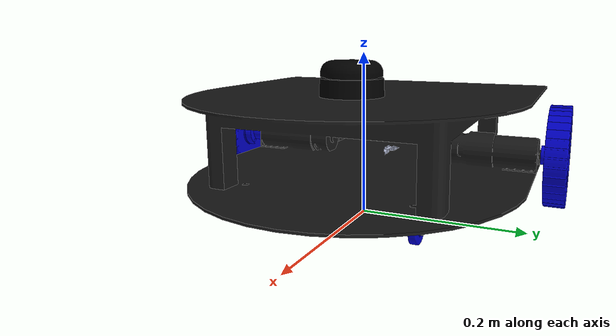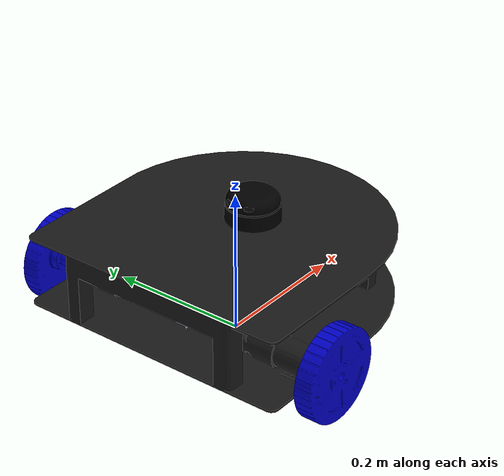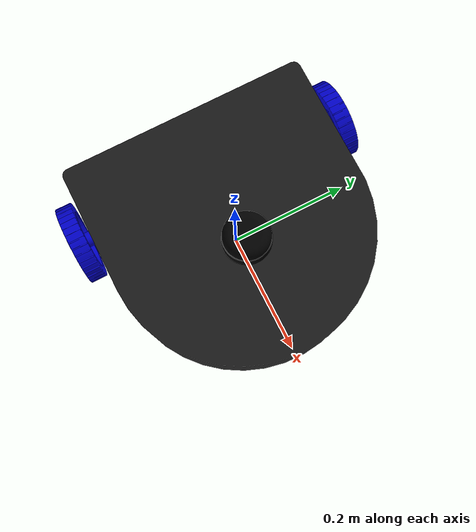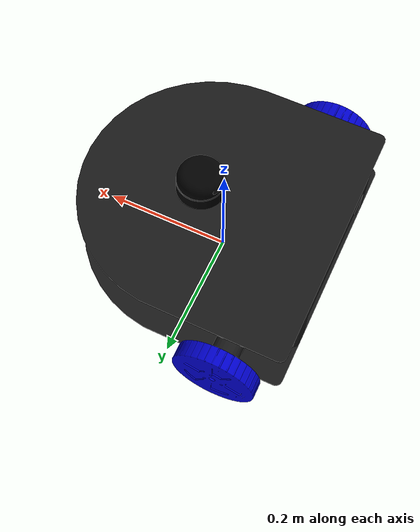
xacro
<?xml version="1.0"?>
<robot  xmlns:xacro="http://ros.org/wiki/xacro"
        name="difflidarbot" >

    <xacro:include filename="$(find difflidarbot)/urdf/caster.urdf.xacro" />
    <xacro:include filename="$(find difflidarbot)/urdf/wheel.urdf.xacro" />
    <xacro:include filename="$(find difflidarbot)/urdf/materials.urdf.xacro" />
    <xacro:include filename="$(find difflidarbot)/urdf/difflidarbot.gazebo.xacro" />

    <xacro:arg name="mesh_enabled" default="true" />
    <xacro:arg name="robot_namespace" default="/"/>
    <xacro:arg name="botname" default=""/>

    <link   name =  "base_footprint"/>

    <link   name = "base_link">
    <inertial>
      <origin
        xyz="-0.0239707214467182 0.000504760596907988 0.0534613565294754"
        rpy="0 0 0" />
      <mass
        value="2.06426285784522" />
      <inertia
        ixx="0.0208727044569018"
        ixy="-1.63273104069268E-05"
        ixz="-2.76908548590674E-10"
        iyy="0.023784285658067"
        iyz="-1.79813734565039E-08"
        izz="0.0437345754000742" />
    </inertial>

		<visual>
		  <origin
			xyz="0 0 0"
			rpy="0 0 0" />
		  <geometry>
			<mesh
			  filename="package://difflidarbot/meshes/base_link.STL" />
		  </geometry>
		  <material name="DarkGrey" />
		</visual>

		<collision>
			<origin
				xyz="0 0 0"
				rpy="0 0 0" />
			<geometry>
			<mesh filename="package://difflidarbot/meshes/base_link.STL" />
			</geometry>
			<material name="DarkGrey" />
		</collision>

    </link>

    <joint name = "base_joint"  type = "fixed">
        <parent link="base_footprint"/>
        <child link="base_link"/>
        <origin xyz="0.0 0.0 0.05305" rpy="0 0 0" />
        <axis xyz="0 1 0" rpy="0 0 0" />
    </joint>

	<link	name="base_scan">
    <inertial>
      <origin
        xyz="0.00083499216952812 2.77877841996649E-05 -0.0165538422721794"
        rpy="0 0 0" />
      <mass
        value="0.162441348075653" />
      <inertia
        ixx="7.45180172109881E-05"
        ixy="1.9767749172107E-08"
        ixz="4.83741945263861E-07"
        iyy="7.39254523433583E-05"
        iyz="1.61173090085499E-08"
        izz="0.000105565753033107" />
    </inertial>
		<visual>
			<origin
				xyz="0 0 0"
				rpy="0 0 0" />
			<geometry>
			<mesh
				filename="package://difflidarbot/meshes/lidar.STL" />
			</geometry>
			<material name="Black" />
		</visual>
		<collision>
			<origin
				xyz="0 0 0"
				rpy="0 0 0" />
			<geometry>
				<mesh filename="package://difflidarbot/meshes/lidar.STL" />
		  </geometry>
		</collision>
	</link>

	<joint name="scan_joint" type="fixed">
		<origin
			xyz="0.038 0.00021705 0.13355"
			rpy="0 0 3.14159" />
		<parent
		  link="base_link" />
		<child
		  link="base_scan" />
		<axis
		  xyz="0 0 0" />
	</joint>

  <link
    name="imu_link">
    <inertial>
      <origin
        xyz="-0.00153952953427407 -0.00101955092400335 -0.00010537065585281"
        rpy="0 0 0" />
      <mass
        value="0.000529368897619893" />
      <inertia
        ixx="1.33291986132662E-08"
        ixy="-6.24680721546872E-14"
        ixz="-5.60525253440556E-12"
        iyy="1.99747899401287E-08"
        iyz="1.93834054606256E-18"
        izz="7.56085395944572E-09" />
    </inertial>
    <visual>
      <origin
        xyz="0 0 0"
        rpy="0 0 0" />
      <geometry>
        <mesh
          filename="package://difflidarbot/meshes/imu.STL" />
      </geometry>
      <material
        name="">
        <color
          rgba="0.792156862745098 0.819607843137255 0.933333333333333 1" />
      </material>
    </visual>
    <collision>
      <origin
        xyz="0 0 0"
        rpy="0 0 0" />
      <geometry>
        <mesh
          filename="package://difflidarbot/meshes/imu.STL" />
      </geometry>
    </collision>
  </link>
  <joint
    name="imu_joint"
    type="fixed">
    <origin
      xyz="-0.101498719390972 0 0.00876299999999997"
      rpy="1.5707963267949 0 1.5707963267949" />
    <parent
      link="base_link" />
    <child
      link="imu_link" />
    <axis
      xyz="0 0 0" />
  </joint>

	<!--caster defination-->
    <xacro:caster caster_prefix="right" parent_link="base_link" >
    <origin
      xyz="0.11025499492819 -0.100173578496859 -0.00634591015875316"
      rpy="0 0 0" />
    </xacro:caster>

	<xacro:caster caster_prefix="left" parent_link="base_link" >
    <origin
      xyz="0.11025499492819 0.0998264215031362 -0.00634591015875452"
      rpy="0 0 0" />
    </xacro:caster>

	<!--wheel defination-->
	<xacro:wheel wheel_prefix="right" parent_link="base_link" >
    <origin
      xyz="-0.0920548053555096 -0.223443578496857 0.0190700000000028"
      rpy="0 0 0" />
    </xacro:wheel>

    <xacro:wheel wheel_prefix="left" parent_link="base_link" >
    <origin
      xyz="-0.0920548053555117 0.223096421503134 0.0190699999999972"
      rpy="0 0 0" />
    </xacro:wheel>

</robot>

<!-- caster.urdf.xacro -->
<robot xmlns:xacro="http://ros.org/wiki/xacro" >

	<!-- Caster Dimensions -->
    <xacro:property name="caster_wheel_length" value="0.01163" />
    <xacro:property name="caster_wheel_radius" value="0.01224" />
    <xacro:property name="caster_base_length" value="0.001" />
    <xacro:property name="caster_base_radius" value="0.004555" />
	<xacro:property name="caster_base_joint_x" value="0" />
    <xacro:property name="caster_base_joint_z" value="0" />
    <xacro:property name="caster_base_link_z" value="-0.05615" />
    <xacro:property name="M_PI" value="3.14" />

	<xacro:property name="wheel_kp" value="600000" />
    <xacro:property name="wheel_kd" value="3" />
    <xacro:property name="wheel_mu1" value="10000000" />
    <xacro:property name="wheel_mu2" value="10000000" />

	<xacro:macro name="caster" params="caster_prefix parent_link *joint_pose">
		<!-- Caster Wheel Link -->
		<link name="${caster_prefix}_caster_link">

    <inertial>
      <origin
        xyz="-1.38777878078145E-17 8.76035355368288E-17 0"
        rpy="0 0 0" />
      <mass
        value="0.00563231136965005" />
      <inertia
        ixx="3.23418393118784E-07"
        ixy="3.65661418016849E-09"
        ixz="-1.57577223364526E-23"
        iyy="5.74788995552012E-07"
        iyz="-1.98644591203129E-21"
        izz="3.23365212679329E-07" />
    </inertial>

			<visual>

				<xacro:if value="$(arg mesh_enabled)">
					<origin
					  xyz="0 0 0" rpy="0 0 0" />
					<geometry>
						<mesh filename="package://difflidarbot/meshes/${caster_prefix}_caster_wheel.STL" />
					</geometry>
				</xacro:if>

				<xacro:unless value="$(arg mesh_enabled)">
					<origin xyz="0 0 0" rpy="${M_PI/2} 0 0" />
					<geometry>
						<cylinder length="${caster_wheel_length/2}" radius="${caster_wheel_radius}" />
					</geometry>
				</xacro:unless>

				<material name="Blue"/>

			</visual>

			<collision>
				<origin
					xyz="0 0 0"
					rpy="0 0 0" />
				<geometry>
					<mesh
					  filename="package://difflidarbot/meshes/${caster_prefix}_caster_wheel.STL" />
				</geometry>
			</collision>
		</link>

		<!-- Caster Base Link -->
		<link name="${caster_prefix}_caster_base">

    <inertial>
      <origin
        xyz="-0.00448850794852911 0.000149901457637872 -0.00968047155100937"
        rpy="0 0 0" />
      <mass
        value="0.001767172170941" />
      <inertia
        ixx="8.78900008183846E-08"
        ixy="-1.12542070635438E-10"
        ixz="-9.61661842867818E-09"
        iyy="8.03579193921896E-08"
        iyz="1.36784047595661E-10"
        izz="9.26288314358772E-08" />
    </inertial>

			<visual>

				<xacro:if value="$(arg mesh_enabled)">
					<origin
						xyz="0 0 0"
						rpy="0 0 0" />
					<geometry>
					  <mesh filename="package://difflidarbot/meshes/${caster_prefix}_caster_base.STL" />
					</geometry>
				</xacro:if>

				<xacro:unless value="$(arg mesh_enabled)">
					<origin xyz="0 0 ${-caster_base_length/2}" rpy="0 0 0" />
					<geometry>
						<cylinder length="${caster_base_length}" radius="${caster_base_radius}" />
					</geometry>
				</xacro:unless>
			</visual>

			<collision>
				<origin
					xyz="0 0 0"
					rpy="0 0 0" />
				<geometry>
					<mesh
					  filename="package://difflidarbot/meshes/${caster_prefix}_caster_base.STL" />
				</geometry>
			</collision>

		</link>

		<!-- Caster Base Link and Wheel Link Joint -->
		<joint name="${caster_prefix}_cwheel" type="continuous">
			<parent link="${caster_prefix}_caster_base"/>
			<child link="${caster_prefix}_caster_link"/>
    <origin
      xyz="-0.0104182158452964 0.000151518664455497 -0.022873360204248"
      rpy="0 0 0" />
    <axis
      xyz="0 -1 0" />
		</joint>

		<!-- Caster base and parent joint -->
		<joint name="${caster_prefix}_caster" type="continuous">
			<parent link="${parent_link}"/>
			<child link="${caster_prefix}_caster_base"/>
			<xacro:insert_block name="joint_pose"/>
    <axis
      xyz="0 0 -1" />
		</joint>

	</xacro:macro>

</robot>

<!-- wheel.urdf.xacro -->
<robot name="wheel" xmlns:xacro="http://ros.org/wiki/xacro" >

<xacro:macro name="wheel" params="wheel_prefix parent_link *joint_pose">

		<!-- Wheel Link -->
		<link name="${wheel_prefix}_wheel_link">
    <inertial>
      <origin
        xyz="2.09333106404586E-10 -0.00152473725038332 1.05400796424071E-09"
        rpy="0 0 0" />
      <mass
        value="0.19611351357196" />
      <inertia
        ixx="0.00024859815585616"
        ixy="-4.33993186483824E-13"
        ixz="2.00773903511573E-12"
        iyy="0.000480450846970988"
        iyz="-2.18810412096022E-12"
        izz="0.000248598165586253" />
    </inertial>

			<visual>
				<origin
					xyz="0 0 0"
					rpy="0 0 0" />
				<geometry>
					<mesh filename="package://difflidarbot/meshes/${wheel_prefix}_wheel.STL" />
				</geometry>
				<material name="Blue"/>
			</visual>
			<collision>
				<origin
					xyz="0 0 0"
					rpy="0 0 0" />
					<geometry>
					<mesh
						filename="package://difflidarbot/meshes/${wheel_prefix}_wheel.STL" />
					</geometry>
				<material name="Blue"/>
			</collision>

		</link>

		<!-- Wheel Joint -->
		<joint name="${wheel_prefix}_wheel" type="continuous">
			<parent link="${parent_link}"/>
			<child link="${wheel_prefix}_wheel_link"/>
			<xacro:insert_block name="joint_pose"/>
    <axis
      xyz="0 1 0" />
    </joint>

</xacro:macro>

</robot>

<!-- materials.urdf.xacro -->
<robot>
  <material name="Blue">
    <color rgba="0.0 0.0 0.8 1.0"/>
  </material>

  <material name="Green">
    <color rgba="0.0 0.8 0.0 1.0"/>
  </material>

  <material name="Grey">
    <color rgba="0.7 0.7 0.7 1.0"/>
  </material>

  <material name="LightGrey">
    <color rgba="0.9 0.9 0.9 1.0"/>
  </material>

 <material name="DarkGrey">
   <color rgba="0.1 0.1 0.1 1.0"/>
 </material>

  <material name="Red">
    <color rgba="0.8 0.0 0.0 1.0"/>
  </material>

  <material name="White">
    <color rgba="1.0 1.0 1.0 1.0"/>
  </material>

  <material name="Yellow">
    <color rgba="0.96 0.88 0.14 1.0"/>
  </material>

  <material name="Black">
    <color rgba="0 0 0 0"/>
  </material>
</robot>
